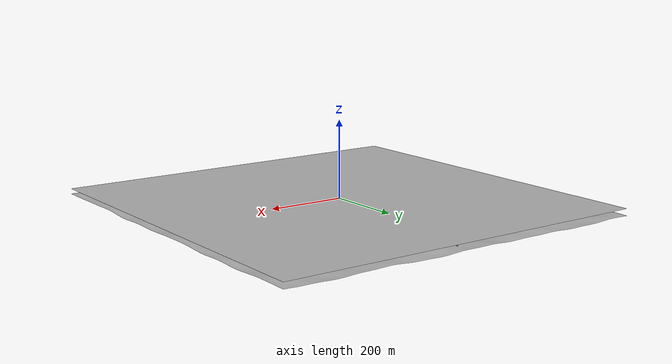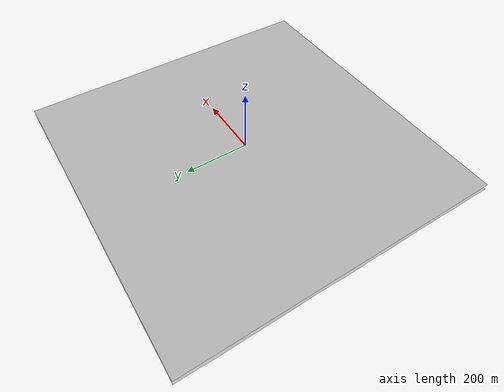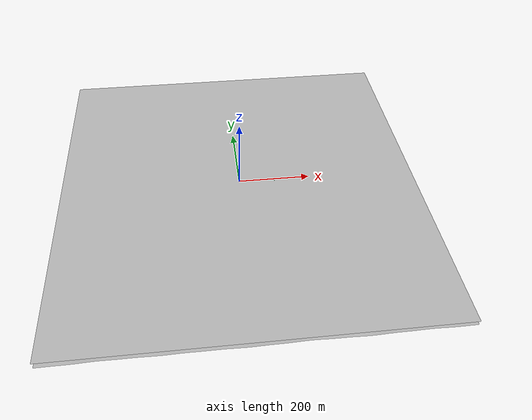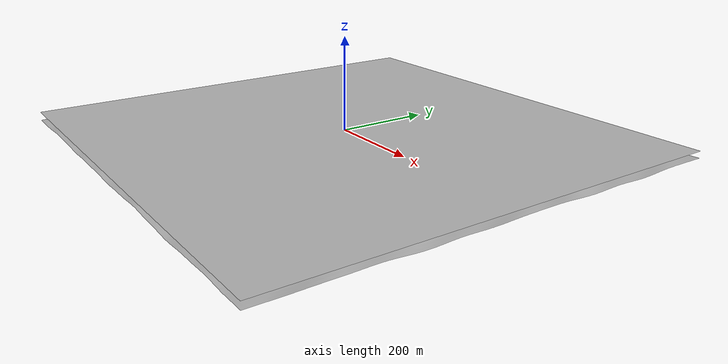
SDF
<sdf version="1.9">
 <world name="flat_world">
  <physics name="1ms" type="ignored">
   <max_step_size>0.002</max_step_size>
   <real_time_factor>1.0</real_time_factor>
  </physics>
  <scene><grid>false</grid><ambient>0.6 0.6 0.6 1.0</ambient><background>0.8 0.85 0.9 1.0</background></scene>
  <plugin filename="gz-sim-physics-system" name="gz::sim::systems::Physics"/>
  <plugin filename="gz-sim-user-commands-system" name="gz::sim::systems::UserCommands"/>
  <plugin filename="gz-sim-scene-broadcaster-system" name="gz::sim::systems::SceneBroadcaster"/>
  <plugin filename="gz-sim-contact-system" name="gz::sim::systems::Contact"/>
  <plugin filename="gz-sim-sensors-system" name="gz::sim::systems::Sensors">
   <render_engine>ogre2</render_engine>
  </plugin>
  <plugin filename="gz-sim-imu-system" name="gz::sim::systems::Imu"/>
  <plugin filename="gz-sim-navsat-system" name="gz::sim::systems::NavSat"/>
  <plugin filename="gz-sim-buoyancy-system" name="gz::sim::systems::Buoyancy">
   <graded_buoyancy>
    <default_density>1000.0</default_density>
    <density_change><above_depth>0</above_depth><density>1.2</density></density_change>
   </graded_buoyancy>
   <enable>blueboat</enable>
  </plugin>
  <spherical_coordinates>
   <surface_model>EARTH_WGS84</surface_model>
   <world_frame_orientation>ENU</world_frame_orientation>
   <latitude_deg>48.0</latitude_deg>
   <longitude_deg>-4.5</longitude_deg>
   <elevation>0.0</elevation>
   <heading_deg>0.0</heading_deg>
  </spherical_coordinates>
  <light type="directional" name="sun">
   <pose>0 0 50 0 0 0</pose>
   <diffuse>0.9 0.9 0.9 1</diffuse>
   <specular>0.3 0.3 0.3 1</specular>
   <direction>-0.5 0.2 -1.0</direction>
  </light>
  <include><uri>model://flat_ocean</uri><name>flat_ocean</name></include>
  <include><uri>model://seafloor</uri><name>seafloor</name></include>
  <model name="tuning_marker_25m_port">
   <static>true</static>
   <pose>25.0 5.0 0.4 0 0 0</pose>
   <link name="link">
    <visual name="body">
     <geometry><cylinder><radius>0.2</radius><length>0.8</length></cylinder></geometry>
     <material><ambient>0.9 0.1 0.1 1</ambient><diffuse>0.9 0.1 0.1 1</diffuse></material>
    </visual>
   </link>
  </model>
  <model name="tuning_marker_25m_starboard">
   <static>true</static>
   <pose>25.0 -5.0 0.4 0 0 0</pose>
   <link name="link">
    <visual name="body">
     <geometry><cone><radius>0.25</radius><length>0.8</length></cone></geometry>
     <material><ambient>0.1 0.8 0.1 1</ambient><diffuse>0.1 0.8 0.1 1</diffuse></material>
    </visual>
   </link>
  </model>
  <model name="tuning_marker_50m_port">
   <static>true</static>
   <pose>50.0 5.0 0.4 0 0 0</pose>
   <link name="link">
    <visual name="body">
     <geometry><cylinder><radius>0.2</radius><length>0.8</length></cylinder></geometry>
     <material><ambient>0.9 0.1 0.1 1</ambient><diffuse>0.9 0.1 0.1 1</diffuse></material>
    </visual>
   </link>
  </model>
  <model name="tuning_marker_50m_starboard">
   <static>true</static>
   <pose>50.0 -5.0 0.4 0 0 0</pose>
   <link name="link">
    <visual name="body">
     <geometry><cone><radius>0.25</radius><length>0.8</length></cone></geometry>
     <material><ambient>0.1 0.8 0.1 1</ambient><diffuse>0.1 0.8 0.1 1</diffuse></material>
    </visual>
   </link>
  </model>
  <model name="tuning_marker_100m_port">
   <static>true</static>
   <pose>100.0 5.0 0.4 0 0 0</pose>
   <link name="link">
    <visual name="body">
     <geometry><cylinder><radius>0.2</radius><length>0.8</length></cylinder></geometry>
     <material><ambient>0.9 0.1 0.1 1</ambient><diffuse>0.9 0.1 0.1 1</diffuse></material>
    </visual>
   </link>
  </model>
  <model name="tuning_marker_100m_starboard">
   <static>true</static>
   <pose>100.0 -5.0 0.4 0 0 0</pose>
   <link name="link">
    <visual name="body">
     <geometry><cone><radius>0.25</radius><length>0.8</length></cone></geometry>
     <material><ambient>0.1 0.8 0.1 1</ambient><diffuse>0.1 0.8 0.1 1</diffuse></material>
    </visual>
   </link>
  </model>
 </world>
</sdf>

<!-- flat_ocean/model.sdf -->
<sdf version="1.9">
    <model name="flat_ocean">
        <static>true</static>
        <link name="link">
            <visual name="visual">
                <geometry>
                    <mesh>
                        <uri>meshes/mesh.dae</uri>
                    </mesh>
                </geometry>
                <plugin filename="gz-sim-shader-param-system" name="gz::sim::systems::ShaderParam">
                    <shader language="glsl">
                        <vertex>materials/programs/GerstnerWaves_vs_330.glsl</vertex>
                        <fragment>materials/programs/GerstnerWaves_fs_330.glsl</fragment>
                    </shader>
                    <shader language="metal">
                        <vertex>materials/programs/GerstnerWaves_vs.metal</vertex>
                        <fragment>materials/programs/GerstnerWaves_fs.metal</fragment>
                    </shader>
                    <param>
                        <shader>vertex</shader>
                        <name>Nwaves</name>
                        <type>int</type>
                        <value>0</value>
                    </param>
                    <param>
                        <shader>vertex</shader>
                        <name>rescale</name>
                        <type>float</type>
                        <value>0.5</value>
                    </param>
                    <param>
                        <shader>vertex</shader>
                        <name>bumpScale</name>
                        <type>float_array</type>
                        <value>30 30</value>
                    </param>
                    <param>
                        <shader>vertex</shader>
                        <name>bumpSpeed</name>
                        <type>float_array</type>
                        <value>0.003 0.003</value>
                    </param>
                    <param>
                        <shader>vertex</shader>
                        <name>amplitude</name>
                        <type>float_array</type>
                        <value>0.0 0.0 0.0</value>
                    </param>
                    <param>
                        <shader>vertex</shader>
                        <name>wavenumber</name>
                        <type>float_array</type>
                        <value>0.2516 0.6441 1.7891</value>
                    </param>
                    <param>
                        <shader>vertex</shader>
                        <name>omega</name>
                        <type>float_array</type>
                        <value>0.0 0.0 0.0</value>
                    </param>
                    <param>
                        <shader>vertex</shader>
                        <name>dir0</name>
                        <type>float_array</type>
                        <value>1.0 0.0</value>
                    </param>
                    <param>
                        <shader>vertex</shader>
                        <name>dir1</name>
                        <type>float_array</type>
                        <value>0.0 1.0</value>
                    </param>
                    <param>
                        <shader>vertex</shader>
                        <name>dir2</name>
                        <type>float_array</type>
                        <value>0.7071 0.7071</value>
                    </param>
                    <param>
                        <shader>vertex</shader>
                        <name>steepness</name>
                        <type>float_array</type>
                        <value>0.0 0.0 0.0</value>
                    </param>
                    <param>
                        <shader>vertex</shader>
                        <name>tau</name>
                        <type>float</type>
                        <value>0.01</value>
                    </param>
                    <param>
                        <shader>vertex</shader>
                        <name>camera_position_object_space</name>
                    </param>
                    <param>
                        <shader>vertex</shader>
                        <name>worldviewproj_matrix</name>
                    </param>
                    <param>
                        <shader>vertex</shader>
                        <name>t</name>
                        <value>TIME</value>
                    </param>
                    <param>
                        <shader>fragment</shader>
                        <name>hdrMultiplier</name>
                        <type>float</type>
                        <value>0.4</value>
                    </param>
                    <param>
                        <shader>fragment</shader>
                        <name>fresnelPower</name>
                        <type>float</type>
                        <value>5.0</value>
                    </param>
                    <param>
                        <shader>fragment</shader>
                        <name>shallowColor</name>
                        <type>float_array</type>
                        <value>0.0 0.1 0.3 1.0</value>
                    </param>
                    <param>
                        <shader>fragment</shader>
                        <name>deepColor</name>
                        <type>float_array</type>
                        <value>0.0 0.05 0.02 1.0</value>
                    </param>
                    <param>
                        <shader>fragment</shader>
                        <name>cubeMap</name>
                        <type>texture_cube</type>
                        <value>materials/textures/skybox_lowres.dds</value>
                        <!-- arg: texture coord set index -->
                        <arg>1</arg>
                    </param>
                    <param>
                        <shader>fragment</shader>
                        <name>bumpMap</name>
                        <type>texture</type>
                        <value>materials/textures/wave_normals.dds</value>
                    </param>
                </plugin>
            </visual>
        </link>
    </model>
</sdf>

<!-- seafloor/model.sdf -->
<sdf version="1.9">
  <model name="seafloor">
    <static>true</static>
    <link name="seafloor_link">
      <!-- High-Fidelity Photorealistic Visual Mesh (Zero Collision Overhead) -->
      <visual name="seafloor_visual">
        <pose>0 0 0 0 0 0</pose>
        <geometry>
          <mesh>
            <uri>model://seafloor/meshes/seafloor.obj</uri>
          </mesh>
        </geometry>
      </visual>
    </link>
  </model>
</sdf>
